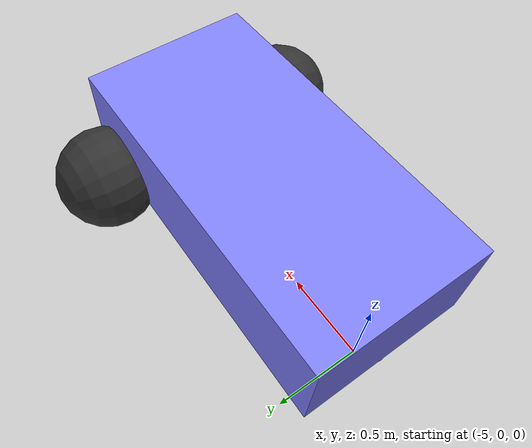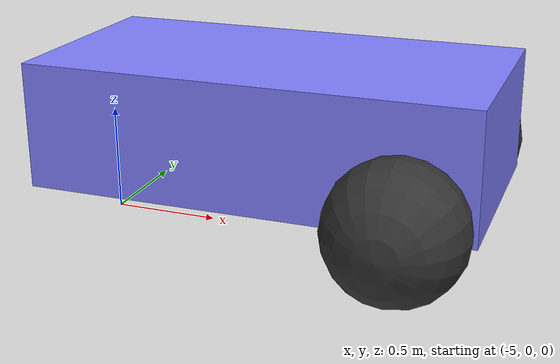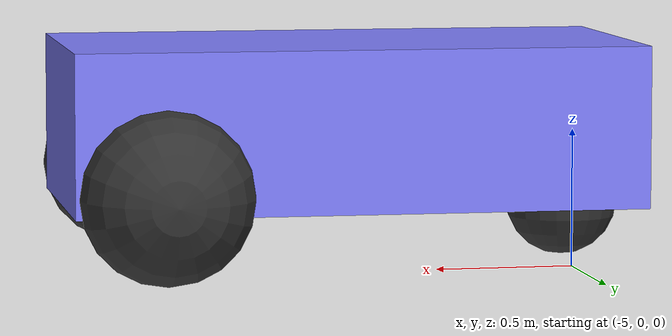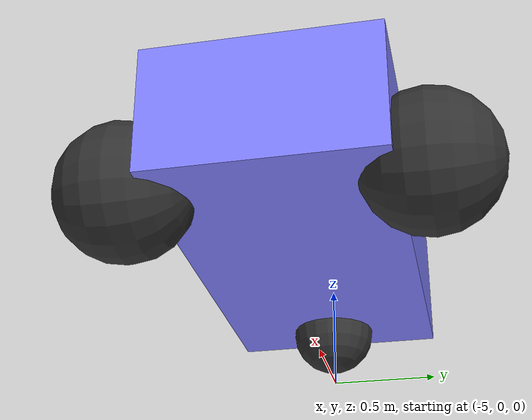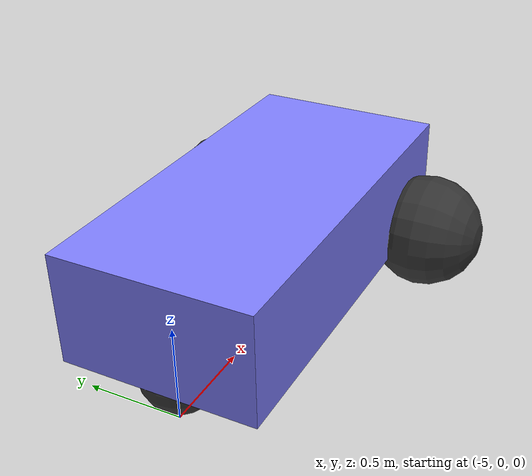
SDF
<sdf version='1.10'>
    <model name='sweepee_2'>
      <pose>-3.9999999923594709 -1.3679798219924739e-14 0.37499916356134794 -6.48428380151821e-15 -3.6334661473190628e-09 -3.9593826131905451e-18</pose>
      <link name='sweepee_2/base_footprint'>
        <pose>-0.15142700000000001 0 0.17499999999999999 0 0 0</pose>
        <inertial>
          <mass>1.14395</mass>
          <inertia>
            <ixx>0.126164</ixx>
            <ixy>0</ixy>
            <ixz>0</ixz>
            <iyy>0.41651899999999997</iyy>
            <iyz>0</iyz>
            <izz>0.481014</izz>
          </inertia>
          <pose>0 0 0 0 0 0</pose>
        </inertial>
        <visual name='visual'>
          <geometry>
            <box>
              <size>2.0114200000000002 1 0.56872599999999995</size>
            </box>
          </geometry>
          <material>
            <ambient>0.5 0.5 1 1</ambient>
            <diffuse>0.5 0.5 1 1</diffuse>
            <specular>0 0 1 1</specular>
          </material>
        </visual>
        <collision name='collision'>
          <geometry>
            <box>
              <size>2.0114200000000002 1 0.56872599999999995</size>
            </box>
          </geometry>
          <surface>
            <friction>
              <ode/>
            </friction>
            <bounce/>
            <contact/>
          </surface>
        </collision>
        <sensor name='gpu_lidar' type='gpu_lidar'>
          <pose>0.35999999999999999 0 0.26000000000000001 0 0 0</pose>
          <topic>sweepee_2/lidar</topic>
          <update_rate>10</update_rate>
          <enable_metrics>false</enable_metrics>
          <gz_frame_id>sweepee_2/front_laser</gz_frame_id>
          <lidar>
            <scan>
              <horizontal>
                <samples>640</samples>
                <resolution>1</resolution>
                <min_angle>-1.396263</min_angle>
                <max_angle>1.396263</max_angle>
              </horizontal>
              <vertical>
                <samples>1</samples>
                <min_angle>0</min_angle>
                <max_angle>0</max_angle>
                <resolution>0.01</resolution>
              </vertical>
            </scan>
            <range>
              <min>0.3</min>
              <max>30</max>
              <resolution>0.01</resolution>
            </range>
            <noise>
              <type>gaussian</type>
              <mean>0.0</mean>
              <stddev>0.007</stddev>
            </noise>
            <visibility_mask>4294967295</visibility_mask>
          </lidar>
        </sensor>
        <enable_wind>false</enable_wind>
      </link>
      <link name='sweepee_2/left_wheel'>
        <pose>0.55428300005964193 0.62502899999999995 -0.024999943948802839 -1.5706999999999987 1.9880640913641687e-10 3.5080083543520347e-21</pose>
        <inertial>
          <mass>2</mass>
          <inertia>
            <ixx>0.14583299999999999</ixx>
            <ixy>0</ixy>
            <ixz>0</ixz>
            <iyy>0.14583299999999999</iyy>
            <iyz>0</iyz>
            <izz>0.125</izz>
          </inertia>
          <pose>0 0 0 0 0 0</pose>
        </inertial>
        <visual name='visual'>
          <geometry>
            <sphere>
              <radius>0.29999999999999999</radius>
            </sphere>
          </geometry>
          <material>
            <ambient>0.200000003 0.200000003 0.200000003 1</ambient>
            <diffuse>0.200000003 0.200000003 0.200000003 1</diffuse>
            <specular>0.200000003 0.200000003 0.200000003 1</specular>
          </material>
        </visual>
        <collision name='collision'>
          <geometry>
            <sphere>
              <radius>0.29999999999999999</radius>
            </sphere>
          </geometry>
          <surface>
            <friction>
              <ode/>
            </friction>
            <bounce/>
            <contact/>
          </surface>
        </collision>
        <enable_wind>false</enable_wind>
      </link>
      <link name='sweepee_2/right_wheel'>
        <pose>0.55428200005964223 -0.62502900000000006 -0.024999943948803116 -1.5706999999999987 1.9880640915551135e-10 3.5098178119419944e-21</pose>
        <inertial>
          <mass>2</mass>
          <inertia>
            <ixx>0.14583299999999999</ixx>
            <ixy>0</ixy>
            <ixz>0</ixz>
            <iyy>0.14583299999999999</iyy>
            <iyz>0</iyz>
            <izz>0.125</izz>
          </inertia>
          <pose>0 0 0 0 0 0</pose>
        </inertial>
        <visual name='visual'>
          <geometry>
            <sphere>
              <radius>0.29999999999999999</radius>
            </sphere>
          </geometry>
          <material>
            <ambient>0.200000003 0.200000003 0.200000003 1</ambient>
            <diffuse>0.200000003 0.200000003 0.200000003 1</diffuse>
            <specular>0.200000003 0.200000003 0.200000003 1</specular>
          </material>
        </visual>
        <collision name='collision'>
          <geometry>
            <sphere>
              <radius>0.29999999999999999</radius>
            </sphere>
          </geometry>
          <surface>
            <friction>
              <ode/>
            </friction>
            <bounce/>
            <contact/>
          </surface>
        </collision>
        <enable_wind>false</enable_wind>
      </link>
      <link name='sweepee_2/caster'>
        <pose>-0.95713800000000093 0 -0.125 6.0979536902564912e-17 -2.3046617859383212e-15 3.9591553400022558e-18</pose>
        <inertial>
          <mass>1</mass>
          <inertia>
            <ixx>0.10000000000000001</ixx>
            <ixy>0</ixy>
            <ixz>0</ixz>
            <iyy>0.10000000000000001</iyy>
            <iyz>0</iyz>
            <izz>0.10000000000000001</izz>
          </inertia>
          <pose>0 0 0 0 0 0</pose>
        </inertial>
        <visual name='visual'>
          <geometry>
            <sphere>
              <radius>0.20000000000000001</radius>
            </sphere>
          </geometry>
          <material>
            <ambient>0.200000003 0.200000003 0.200000003 1</ambient>
            <diffuse>0.200000003 0.200000003 0.200000003 1</diffuse>
            <specular>0.200000003 0.200000003 0.200000003 1</specular>
          </material>
        </visual>
        <collision name='collision'>
          <geometry>
            <sphere>
              <radius>0.20000000000000001</radius>
            </sphere>
          </geometry>
          <surface>
            <friction>
              <ode/>
            </friction>
            <bounce/>
            <contact/>
          </surface>
        </collision>
        <enable_wind>false</enable_wind>
      </link>
      <joint name='sweepee_2/left_wheel_joint' type='revolute'>
        <parent>sweepee_2/base_footprint</parent>
        <child>sweepee_2/left_wheel</child>
        <axis>
          <xyz>0 0 1</xyz>
          <limit>
            <lower>-1.7976900000000001e+308</lower>
            <upper>1.7976900000000001e+308</upper>
            <effort>inf</effort>
            <velocity>inf</velocity>
            <stiffness>100000000</stiffness>
            <dissipation>1</dissipation>
          </limit>
          <dynamics>
            <spring_reference>0</spring_reference>
            <spring_stiffness>0</spring_stiffness>
            <damping>0</damping>
            <friction>0</friction>
          </dynamics>
        </axis>
        <pose>0 0 1.1102230246251565e-16 0 0 0</pose>
      </joint>
      <joint name='sweepee_2/right_wheel_joint' type='revolute'>
        <parent>sweepee_2/base_footprint</parent>
        <child>sweepee_2/right_wheel</child>
        <axis>
          <xyz>0 0 1</xyz>
          <limit>
            <lower>-1.7976900000000001e+308</lower>
            <upper>1.7976900000000001e+308</upper>
            <effort>inf</effort>
            <velocity>inf</velocity>
            <stiffness>100000000</stiffness>
            <dissipation>1</dissipation>
          </limit>
          <dynamics>
            <spring_reference>0</spring_reference>
            <spring_stiffness>0</spring_stiffness>
            <damping>0</damping>
            <friction>0</friction>
          </dynamics>
        </axis>
        <pose>-1.1102230246251565e-16 0 0 0 0 0</pose>
      </joint>
      <joint name='sweepee_2/caster_wheel' type='ball'>
        <parent>sweepee_2/base_footprint</parent>
        <child>sweepee_2/caster</child>
        <pose>0 0 0 0 0 0</pose>
      </joint>
      <frame name='sweepee_2/front_laser_joint' attached_to='sweepee_2/base_footprint'>
        <pose>0.35999999999999999 0 0.26000000000000001 0 0 0</pose>
      </frame>
      <frame name='sweepee_2/front_laser' attached_to='sweepee_2/front_laser_joint'>
        <pose>0 0 0 0 0 0</pose>
      </frame>
      <plugin name='gz::sim::systems::DiffDrive' filename='gz-sim-diff-drive-system'>
        <left_joint>sweepee_2/left_wheel_joint</left_joint>
        <right_joint>sweepee_2/right_wheel_joint</right_joint>
        <wheel_separation>1.25</wheel_separation>
        <wheel_radius>0.3</wheel_radius>
        <odom_publish_frequency>50</odom_publish_frequency>
        <topic>sweepee_2/cmd_vel</topic>
        <frame_id>sweepee_2/odom</frame_id>
        <odom_topic>sweepee_2/odom</odom_topic>
        <tf_topic>/tf</tf_topic>
        <child_frame_id>sweepee_2/base_footprint</child_frame_id>
      </plugin>
      <static>false</static>
      <self_collide>false</self_collide>
    </model>
</sdf>
